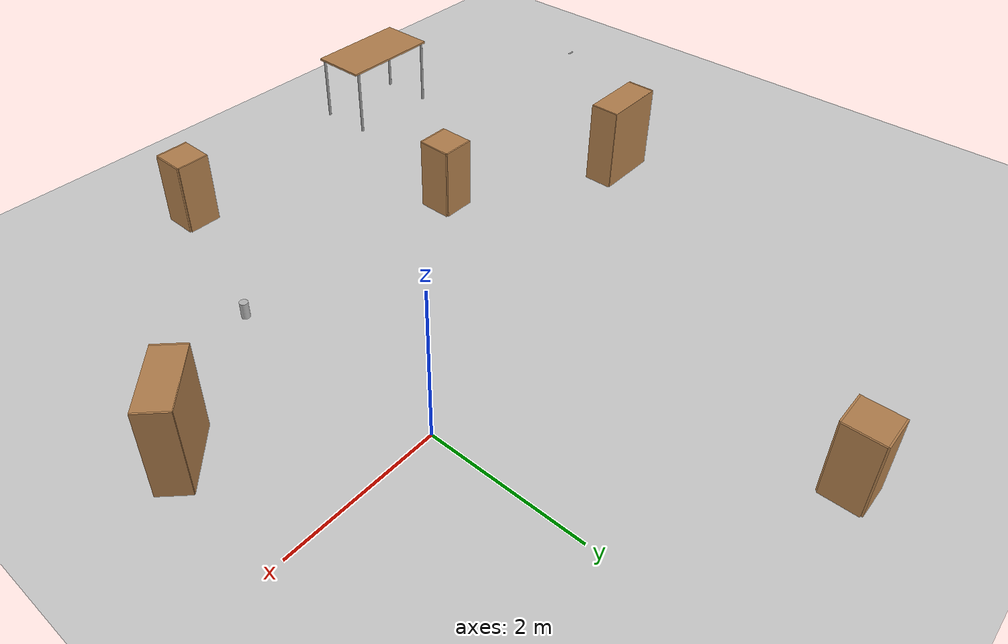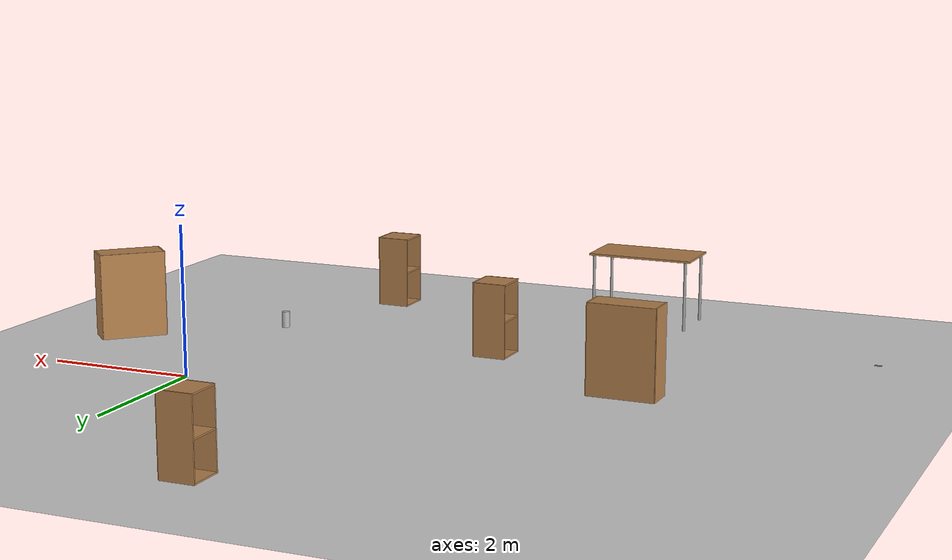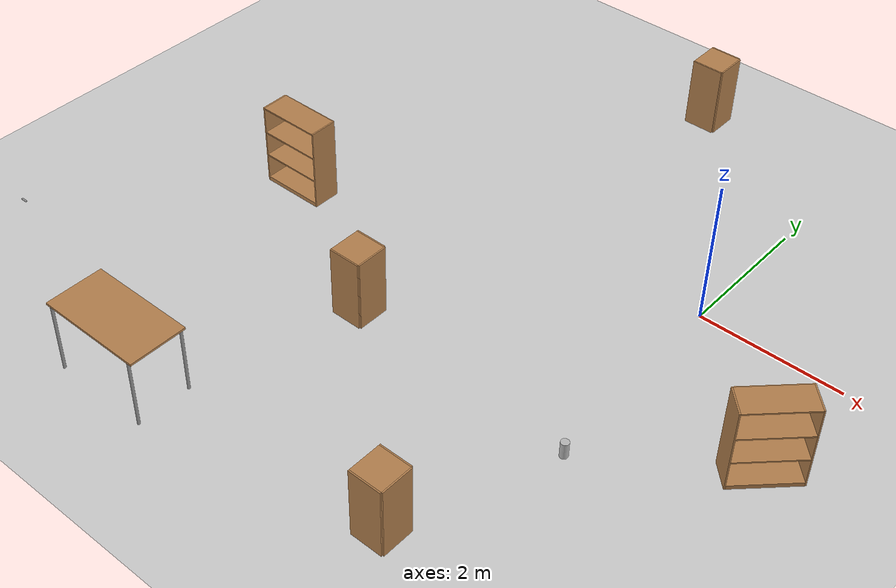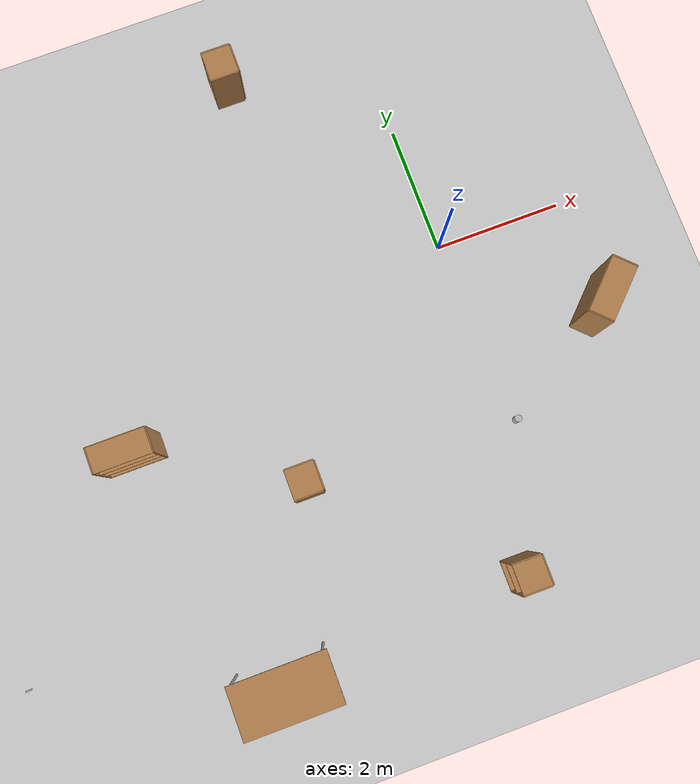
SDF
<sdf version="1.7">
 <world name="default">
  <light name="sun" type="directional">
   <pose>0 0 10 0 -0 0</pose>
   <diffuse>0.8 0.8 0.8 1</diffuse>
   <specular>0.2 0.2 0.2 1</specular>
   <attenuation>
    <range>1000</range>
    <constant>0.9</constant>
    <linear>0.01</linear>
    <quadratic>0.001</quadratic>
   </attenuation>
   <direction>-0.5 0.1 -0.9</direction>
   <spot><inner_angle>0</inner_angle><outer_angle>0</outer_angle><falloff>0</falloff></spot>
  </light>
  <model name="ground_plane">
   <static>1</static>
   <link name="link">
    <collision name="collision">
     <geometry><plane><normal>0 0 1</normal><size>100 100</size></plane></geometry>
     <surface>
      <contact><collide_bitmask>65535</collide_bitmask></contact>
      <friction><ode><mu>100</mu><mu2>50</mu2></ode></friction>
     </surface>
    </collision>
    <visual name="visual">
     <cast_shadows>0</cast_shadows>
     <geometry><plane><normal>0 0 1</normal><size>100 100</size></plane></geometry>
     <material>
      <script><uri>file://media/materials/scripts/gazebo.material</uri><name>Gazebo/Grey</name></script>
     </material>
    </visual>
   </link>
  </model>
  <gravity>0 0 -9.8</gravity>
  <magnetic_field>6e-06 2.3e-05 -4.2e-05</magnetic_field>
  <atmosphere type="adiabatic"/>
  <physics type="ode">
   <max_step_size>0.001</max_step_size>
   <real_time_factor>1</real_time_factor>
   <real_time_update_rate>1000</real_time_update_rate>
  </physics>
  <scene><ambient>0.4 0.4 0.4 1</ambient><background>0.7 0.7 0.7 1</background><shadows>1</shadows></scene>
  <spherical_coordinates>
   <surface_model>EARTH_WGS84</surface_model>
   <latitude_deg>0</latitude_deg>
   <longitude_deg>0</longitude_deg>
   <elevation>0</elevation>
   <heading_deg>0</heading_deg>
  </spherical_coordinates>
  <model name="cabinet">
   <static>1</static>
   <link name="cabinet_bottom_plate">
    <inertial>
     <pose>0 0 -1 0 -0 0</pose>
     <inertia><ixx>2.05</ixx><ixy>0</ixy><ixz>0</ixz><iyy>2.05</iyy><iyz>0</iyz><izz>2.05</izz></inertia>
     <mass>25</mass>
    </inertial>
    <collision name="cabinet_bottom_plate_geom">
     <pose>0 0 0.01 0 -0 0</pose>
     <geometry><box><size>0.45 0.45 0.02</size></box></geometry>
    </collision>
    <visual name="cabinet_bottom_plate_geom_visual">
     <pose>0 0 0.01 0 -0 0</pose>
     <geometry><box><size>0.45 0.45 0.02</size></box></geometry>
     <material>
      <script><uri>file://media/materials/scripts/gazebo.material</uri><name>Gazebo/Wood</name></script>
     </material>
    </visual>
    <collision name="cabinet_bottom_plate_geom_cabinet_back_plate">
     <pose>0.235 0 0.51 0 -0 0</pose>
     <geometry><box><size>0.02 0.45 1.02</size></box></geometry>
    </collision>
    <visual name="cabinet_bottom_plate_geom_cabinet_back_plate_visual">
     <pose>0.235 0 0.51 0 -0 0</pose>
     <geometry><box><size>0.02 0.45 1.02</size></box></geometry>
     <material>
      <script><uri>file://media/materials/scripts/gazebo.material</uri><name>Gazebo/Wood</name></script>
     </material>
    </visual>
    <collision name="cabinet_bottom_plate_geom_cabinet_left_plate">
     <pose>0 0.235 0.51 0 -0 0</pose>
     <geometry><box><size>0.45 0.02 1.02</size></box></geometry>
    </collision>
    <visual name="cabinet_bottom_plate_geom_cabinet_left_plate_visual">
     <pose>0 0.235 0.51 0 -0 0</pose>
     <geometry><box><size>0.45 0.02 1.02</size></box></geometry>
     <material>
      <script><uri>file://media/materials/scripts/gazebo.material</uri><name>Gazebo/Wood</name></script>
     </material>
    </visual>
    <collision name="cabinet_bottom_plate_geom_cabinet_middle_plate">
     <pose>0 0 0.51 0 -0 0</pose>
     <geometry><box><size>0.45 0.45 0.02</size></box></geometry>
    </collision>
    <visual name="cabinet_bottom_plate_geom_cabinet_middle_plate_visual">
     <pose>0 0 0.51 0 -0 0</pose>
     <geometry><box><size>0.45 0.45 0.02</size></box></geometry>
     <material>
      <script><uri>file://media/materials/scripts/gazebo.material</uri><name>Gazebo/Wood</name></script>
     </material>
    </visual>
    <collision name="cabinet_bottom_plate_geom_cabinet_right_plate">
     <pose>0 -0.235 0.51 0 -0 0</pose>
     <geometry><box><size>0.45 0.02 1.02</size></box></geometry>
    </collision>
    <visual name="cabinet_bottom_plate_geom_cabinet_right_plate_visual">
     <pose>0 -0.235 0.51 0 -0 0</pose>
     <geometry><box><size>0.45 0.02 1.02</size></box></geometry>
     <material>
      <script><uri>file://media/materials/scripts/gazebo.material</uri><name>Gazebo/Wood</name></script>
     </material>
    </visual>
    <collision name="cabinet_bottom_plate_geom_cabinet_top_plate">
     <pose>0 0 1.01 0 -0 0</pose>
     <geometry><box><size>0.45 0.45 0.02</size></box></geometry>
    </collision>
    <visual name="cabinet_bottom_plate_geom_cabinet_top_plate_visual">
     <pose>0 0 1.01 0 -0 0</pose>
     <geometry><box><size>0.45 0.45 0.02</size></box></geometry>
     <material>
      <script><uri>file://media/materials/scripts/gazebo.material</uri><name>Gazebo/Wood</name></script>
     </material>
    </visual>
   </link>
   <pose>-3.2045 -2.73705 0 0 -0 0</pose>
  </model>
  <model name="bookshelf">
   <static>1</static>
   <link name="link">
    <inertial><mass>1</mass></inertial>
    <collision name="back">
     <pose>0 0.005 0.6 0 -0 0</pose>
     <geometry><box><size>0.9 0.01 1.2</size></box></geometry>
    </collision>
    <visual name="visual1">
     <pose>0 0.005 0.6 0 -0 0</pose>
     <geometry><box><size>0.9 0.01 1.2</size></box></geometry>
     <material>
      <script><uri>file://media/materials/scripts/gazebo.material</uri><name>Gazebo/Wood</name></script>
     </material>
    </visual>
    <collision name="left_side">
     <pose>0.45 -0.195 0.6 0 -0 0</pose>
     <geometry><box><size>0.02 0.4 1.2</size></box></geometry>
    </collision>
    <visual name="visual2">
     <pose>0.45 -0.195 0.6 0 -0 0</pose>
     <geometry><box><size>0.02 0.4 1.2</size></box></geometry>
     <material>
      <script><uri>file://media/materials/scripts/gazebo.material</uri><name>Gazebo/Wood</name></script>
     </material>
    </visual>
    <collision name="right_side">
     <pose>-0.45 -0.195 0.6 0 -0 0</pose>
     <geometry><box><size>0.02 0.4 1.2</size></box></geometry>
    </collision>
    <visual name="visual3">
     <pose>-0.45 -0.195 0.6 0 -0 0</pose>
     <geometry><box><size>0.02 0.4 1.2</size></box></geometry>
     <material>
      <script><uri>file://media/materials/scripts/gazebo.material</uri><name>Gazebo/Wood</name></script>
     </material>
    </visual>
    <collision name="bottom">
     <pose>0 -0.195 0.03 0 -0 0</pose>
     <geometry><box><size>0.88 0.4 0.06</size></box></geometry>
    </collision>
    <visual name="visual4">
     <pose>0 -0.195 0.03 0 -0 0</pose>
     <geometry><box><size>0.88 0.4 0.06</size></box></geometry>
     <material>
      <script><uri>file://media/materials/scripts/gazebo.material</uri><name>Gazebo/Wood</name></script>
     </material>
    </visual>
    <collision name="top">
     <pose>0 -0.195 1.19 0 -0 0</pose>
     <geometry><box><size>0.88 0.4 0.02</size></box></geometry>
    </collision>
    <visual name="visual5">
     <pose>0 -0.195 1.19 0 -0 0</pose>
     <geometry><box><size>0.88 0.4 0.02</size></box></geometry>
     <material>
      <script><uri>file://media/materials/scripts/gazebo.material</uri><name>Gazebo/Wood</name></script>
     </material>
    </visual>
    <collision name="low_shelf">
     <pose>0 -0.195 0.43 0 -0 0</pose>
     <geometry><box><size>0.88 0.4 0.02</size></box></geometry>
    </collision>
    <visual name="visual6">
     <pose>0 -0.195 0.43 0 -0 0</pose>
     <geometry><box><size>0.88 0.4 0.02</size></box></geometry>
     <material>
      <script><uri>file://media/materials/scripts/gazebo.material</uri><name>Gazebo/Wood</name></script>
     </material>
    </visual>
    <collision name="high_shelf">
     <pose>0 -0.195 0.8 0 -0 0</pose>
     <geometry><box><size>0.88 0.4 0.02</size></box></geometry>
    </collision>
    <visual name="visual7">
     <pose>0 -0.195 0.8 0 -0 0</pose>
     <geometry><box><size>0.88 0.4 0.02</size></box></geometry>
     <material>
      <script><uri>file://media/materials/scripts/gazebo.material</uri><name>Gazebo/Wood</name></script>
     </material>
    </visual>
   </link>
   <pose>-5.49787 -1.25492 0 0 -0 0</pose>
  </model>
  <model name="table">
   <static>1</static>
   <link name="link">
    <collision name="surface">
     <pose>0 0 1 0 -0 0</pose>
     <geometry><box><size>1.5 0.8 0.03</size></box></geometry>
     <surface><friction><ode><mu>0.6</mu><mu2>0.6</mu2></ode></friction></surface>
    </collision>
    <visual name="visual1">
     <pose>0 0 1 0 -0 0</pose>
     <geometry><box><size>1.5 0.8 0.03</size></box></geometry>
     <material>
      <script><uri>file://media/materials/scripts/gazebo.material</uri><name>Gazebo/Wood</name></script>
     </material>
    </visual>
    <collision name="front_left_leg">
     <pose>0.68 0.38 0.5 0 -0 0</pose>
     <geometry><cylinder><radius>0.02</radius><length>1</length></cylinder></geometry>
    </collision>
    <visual name="front_left_leg">
     <pose>0.68 0.38 0.5 0 -0 0</pose>
     <geometry><cylinder><radius>0.02</radius><length>1</length></cylinder></geometry>
     <material>
      <script><uri>file://media/materials/scripts/gazebo.material</uri><name>Gazebo/Grey</name></script>
     </material>
    </visual>
    <collision name="front_right_leg">
     <pose>0.68 -0.38 0.5 0 -0 0</pose>
     <geometry><cylinder><radius>0.02</radius><length>1</length></cylinder></geometry>
    </collision>
    <visual name="front_right_leg">
     <pose>0.68 -0.38 0.5 0 -0 0</pose>
     <geometry><cylinder><radius>0.02</radius><length>1</length></cylinder></geometry>
     <material>
      <script><uri>file://media/materials/scripts/gazebo.material</uri><name>Gazebo/Grey</name></script>
     </material>
    </visual>
    <collision name="back_right_leg">
     <pose>-0.68 -0.38 0.5 0 -0 0</pose>
     <geometry><cylinder><radius>0.02</radius><length>1</length></cylinder></geometry>
    </collision>
    <visual name="back_right_leg">
     <pose>-0.68 -0.38 0.5 0 -0 0</pose>
     <geometry><cylinder><radius>0.02</radius><length>1</length></cylinder></geometry>
     <material>
      <script><uri>file://media/materials/scripts/gazebo.material</uri><name>Gazebo/Grey</name></script>
     </material>
    </visual>
    <collision name="back_left_leg">
     <pose>-0.68 0.38 0.5 0 -0 0</pose>
     <geometry><cylinder><radius>0.02</radius><length>1</length></cylinder></geometry>
    </collision>
    <visual name="back_left_leg">
     <pose>-0.68 0.38 0.5 0 -0 0</pose>
     <geometry><cylinder><radius>0.02</radius><length>1</length></cylinder></geometry>
     <material>
      <script><uri>file://media/materials/scripts/gazebo.material</uri><name>Gazebo/Grey</name></script>
     </material>
    </visual>
   </link>
   <pose>-4.44874 -5.42867 0 0 -0 0</pose>
  </model>
  <model name="stone_10_2_5_1cm">
   <link name="link">
    <pose>0 0 0.005 0 -0 0</pose>
    <inertial>
     <mass>0.0628</mass>
     <inertia>
      <ixx>3.79417e-06</ixx>
      <ixy>0</ixy>
      <ixz>0</ixz>
      <iyy>5.28567e-05</iyy>
      <iyz>0</iyz>
      <izz>5.56042e-05</izz>
     </inertia>
    </inertial>
    <collision name="collision">
     <geometry><box><size>0.1 0.025 0.01</size></box></geometry>
     <surface>
      <contact>
       <poissons_ratio>0.15</poissons_ratio>
       <elastic_modulus>8e+10</elastic_modulus>
       <ode><kp>100000</kp><kd>100</kd><max_vel>100</max_vel><min_depth>0.001</min_depth></ode>
      </contact>
      <friction>
       <torsional>
        <coefficient>1</coefficient>
        <use_patch_radius>0</use_patch_radius>
        <surface_radius>0.01</surface_radius>
       </torsional>
      </friction>
     </surface>
    </collision>
    <visual name="visual">
     <geometry><box><size>0.1 0.025 0.01</size></box></geometry>
     <material>
      <script><uri>file://media/materials/scripts/gazebo.material</uri><name>Gazebo/Grey</name></script>
     </material>
    </visual>
   </link>
   <pose>-8.08427 -4.19548 0.003998 0 -0 0</pose>
  </model>
  <model name="beer">
   <link name="link">
    <pose>0 0 0.115 0 -0 0</pose>
    <inertial>
     <mass>0.39</mass>
     <inertia><ixx>0.00058</ixx><ixy>0</ixy><ixz>0</ixz><iyy>0.00058</iyy><iyz>0</iyz><izz>0.00019</izz></inertia>
    </inertial>
    <collision name="collision">
     <geometry><cylinder><radius>0.055</radius><length>0.23</length></cylinder></geometry>
    </collision>
    <visual name="visual">
     <geometry><cylinder><radius>0.055</radius><length>0.23</length></cylinder></geometry>
     <material>
      <script>
       <uri>model://beer/materials/scripts</uri>
       <uri>model://beer/materials/textures</uri>
       <name>Beer/Diffuse</name>
      </script>
     </material>
    </visual>
   </link>
   <pose>0.146292 -2.94481 0.004996 2.5e-05 0.0001 0.000529</pose>
  </model>
  <model name="bookshelf_0">
   <static>1</static>
   <link name="link">
    <inertial><mass>1</mass></inertial>
    <collision name="back">
     <pose>0 0.005 0.6 0 -0 0</pose>
     <geometry><box><size>0.9 0.01 1.2</size></box></geometry>
    </collision>
    <visual name="visual1">
     <pose>0 0.005 0.6 0 -0 0</pose>
     <geometry><box><size>0.9 0.01 1.2</size></box></geometry>
     <material>
      <script><uri>file://media/materials/scripts/gazebo.material</uri><name>Gazebo/Wood</name></script>
     </material>
    </visual>
    <collision name="left_side">
     <pose>0.45 -0.195 0.6 0 -0 0</pose>
     <geometry><box><size>0.02 0.4 1.2</size></box></geometry>
    </collision>
    <visual name="visual2">
     <pose>0.45 -0.195 0.6 0 -0 0</pose>
     <geometry><box><size>0.02 0.4 1.2</size></box></geometry>
     <material>
      <script><uri>file://media/materials/scripts/gazebo.material</uri><name>Gazebo/Wood</name></script>
     </material>
    </visual>
    <collision name="right_side">
     <pose>-0.45 -0.195 0.6 0 -0 0</pose>
     <geometry><box><size>0.02 0.4 1.2</size></box></geometry>
    </collision>
    <visual name="visual3">
     <pose>-0.45 -0.195 0.6 0 -0 0</pose>
     <geometry><box><size>0.02 0.4 1.2</size></box></geometry>
     <material>
      <script><uri>file://media/materials/scripts/gazebo.material</uri><name>Gazebo/Wood</name></script>
     </material>
    </visual>
    <collision name="bottom">
     <pose>0 -0.195 0.03 0 -0 0</pose>
     <geometry><box><size>0.88 0.4 0.06</size></box></geometry>
    </collision>
    <visual name="visual4">
     <pose>0 -0.195 0.03 0 -0 0</pose>
     <geometry><box><size>0.88 0.4 0.06</size></box></geometry>
     <material>
      <script><uri>file://media/materials/scripts/gazebo.material</uri><name>Gazebo/Wood</name></script>
     </material>
    </visual>
    <collision name="top">
     <pose>0 -0.195 1.19 0 -0 0</pose>
     <geometry><box><size>0.88 0.4 0.02</size></box></geometry>
    </collision>
    <visual name="visual5">
     <pose>0 -0.195 1.19 0 -0 0</pose>
     <geometry><box><size>0.88 0.4 0.02</size></box></geometry>
     <material>
      <script><uri>file://media/materials/scripts/gazebo.material</uri><name>Gazebo/Wood</name></script>
     </material>
    </visual>
    <collision name="low_shelf">
     <pose>0 -0.195 0.43 0 -0 0</pose>
     <geometry><box><size>0.88 0.4 0.02</size></box></geometry>
    </collision>
    <visual name="visual6">
     <pose>0 -0.195 0.43 0 -0 0</pose>
     <geometry><box><size>0.88 0.4 0.02</size></box></geometry>
     <material>
      <script><uri>file://media/materials/scripts/gazebo.material</uri><name>Gazebo/Wood</name></script>
     </material>
    </visual>
    <collision name="high_shelf">
     <pose>0 -0.195 0.8 0 -0 0</pose>
     <geometry><box><size>0.88 0.4 0.02</size></box></geometry>
    </collision>
    <visual name="visual7">
     <pose>0 -0.195 0.8 0 -0 0</pose>
     <geometry><box><size>0.88 0.4 0.02</size></box></geometry>
     <material>
      <script><uri>file://media/materials/scripts/gazebo.material</uri><name>Gazebo/Wood</name></script>
     </material>
    </visual>
   </link>
   <pose>1.7886 -1.55736 0 0 -0 0.785398</pose>
  </model>
  <model name="cabinet_0">
   <static>1</static>
   <link name="cabinet_bottom_plate">
    <inertial>
     <pose>0 0 -1 0 -0 0</pose>
     <inertia><ixx>2.05</ixx><ixy>0</ixy><ixz>0</ixz><iyy>2.05</iyy><iyz>0</iyz><izz>2.05</izz></inertia>
     <mass>25</mass>
    </inertial>
    <collision name="cabinet_bottom_plate_geom">
     <pose>0 0 0.01 0 -0 0</pose>
     <geometry><box><size>0.45 0.45 0.02</size></box></geometry>
    </collision>
    <visual name="cabinet_bottom_plate_geom_visual">
     <pose>0 0 0.01 0 -0 0</pose>
     <geometry><box><size>0.45 0.45 0.02</size></box></geometry>
     <material>
      <script><uri>file://media/materials/scripts/gazebo.material</uri><name>Gazebo/Wood</name></script>
     </material>
    </visual>
    <collision name="cabinet_bottom_plate_geom_cabinet_back_plate">
     <pose>0.235 0 0.51 0 -0 0</pose>
     <geometry><box><size>0.02 0.45 1.02</size></box></geometry>
    </collision>
    <visual name="cabinet_bottom_plate_geom_cabinet_back_plate_visual">
     <pose>0.235 0 0.51 0 -0 0</pose>
     <geometry><box><size>0.02 0.45 1.02</size></box></geometry>
     <material>
      <script><uri>file://media/materials/scripts/gazebo.material</uri><name>Gazebo/Wood</name></script>
     </material>
    </visual>
    <collision name="cabinet_bottom_plate_geom_cabinet_left_plate">
     <pose>0 0.235 0.51 0 -0 0</pose>
     <geometry><box><size>0.45 0.02 1.02</size></box></geometry>
    </collision>
    <visual name="cabinet_bottom_plate_geom_cabinet_left_plate_visual">
     <pose>0 0.235 0.51 0 -0 0</pose>
     <geometry><box><size>0.45 0.02 1.02</size></box></geometry>
     <material>
      <script><uri>file://media/materials/scripts/gazebo.material</uri><name>Gazebo/Wood</name></script>
     </material>
    </visual>
    <collision name="cabinet_bottom_plate_geom_cabinet_middle_plate">
     <pose>0 0 0.51 0 -0 0</pose>
     <geometry><box><size>0.45 0.45 0.02</size></box></geometry>
    </collision>
    <visual name="cabinet_bottom_plate_geom_cabinet_middle_plate_visual">
     <pose>0 0 0.51 0 -0 0</pose>
     <geometry><box><size>0.45 0.45 0.02</size></box></geometry>
     <material>
      <script><uri>file://media/materials/scripts/gazebo.material</uri><name>Gazebo/Wood</name></script>
     </material>
    </visual>
    <collision name="cabinet_bottom_plate_geom_cabinet_right_plate">
     <pose>0 -0.235 0.51 0 -0 0</pose>
     <geometry><box><size>0.45 0.02 1.02</size></box></geometry>
    </collision>
    <visual name="cabinet_bottom_plate_geom_cabinet_right_plate_visual">
     <pose>0 -0.235 0.51 0 -0 0</pose>
     <geometry><box><size>0.45 0.02 1.02</size></box></geometry>
     <material>
      <script><uri>file://media/materials/scripts/gazebo.material</uri><name>Gazebo/Wood</name></script>
     </material>
    </visual>
    <collision name="cabinet_bottom_plate_geom_cabinet_top_plate">
     <pose>0 0 1.01 0 -0 0</pose>
     <geometry><box><size>0.45 0.45 0.02</size></box></geometry>
    </collision>
    <visual name="cabinet_bottom_plate_geom_cabinet_top_plate_visual">
     <pose>0 0 1.01 0 -0 0</pose>
     <geometry><box><size>0.45 0.45 0.02</size></box></geometry>
     <material>
      <script><uri>file://media/materials/scripts/gazebo.material</uri><name>Gazebo/Wood</name></script>
     </material>
    </visual>
   </link>
   <pose>-2.25109 3.58664 0 0 -0 0</pose>
  </model>
  <model name="cabinet_1">
   <static>1</static>
   <link name="cabinet_bottom_plate">
    <inertial>
     <pose>0 0 -1 0 -0 0</pose>
     <inertia><ixx>2.05</ixx><ixy>0</ixy><ixz>0</ixz><iyy>2.05</iyy><iyz>0</iyz><izz>2.05</izz></inertia>
     <mass>25</mass>
    </inertial>
    <collision name="cabinet_bottom_plate_geom">
     <pose>0 0 0.01 0 -0 0</pose>
     <geometry><box><size>0.45 0.45 0.02</size></box></geometry>
    </collision>
    <visual name="cabinet_bottom_plate_geom_visual">
     <pose>0 0 0.01 0 -0 0</pose>
     <geometry><box><size>0.45 0.45 0.02</size></box></geometry>
     <material>
      <script><uri>file://media/materials/scripts/gazebo.material</uri><name>Gazebo/Wood</name></script>
     </material>
    </visual>
    <collision name="cabinet_bottom_plate_geom_cabinet_back_plate">
     <pose>0.235 0 0.51 0 -0 0</pose>
     <geometry><box><size>0.02 0.45 1.02</size></box></geometry>
    </collision>
    <visual name="cabinet_bottom_plate_geom_cabinet_back_plate_visual">
     <pose>0.235 0 0.51 0 -0 0</pose>
     <geometry><box><size>0.02 0.45 1.02</size></box></geometry>
     <material>
      <script><uri>file://media/materials/scripts/gazebo.material</uri><name>Gazebo/Wood</name></script>
     </material>
    </visual>
    <collision name="cabinet_bottom_plate_geom_cabinet_left_plate">
     <pose>0 0.235 0.51 0 -0 0</pose>
     <geometry><box><size>0.45 0.02 1.02</size></box></geometry>
    </collision>
    <visual name="cabinet_bottom_plate_geom_cabinet_left_plate_visual">
     <pose>0 0.235 0.51 0 -0 0</pose>
     <geometry><box><size>0.45 0.02 1.02</size></box></geometry>
     <material>
      <script><uri>file://media/materials/scripts/gazebo.material</uri><name>Gazebo/Wood</name></script>
     </material>
    </visual>
    <collision name="cabinet_bottom_plate_geom_cabinet_middle_plate">
     <pose>0 0 0.51 0 -0 0</pose>
     <geometry><box><size>0.45 0.45 0.02</size></box></geometry>
    </collision>
    <visual name="cabinet_bottom_plate_geom_cabinet_middle_plate_visual">
     <pose>0 0 0.51 0 -0 0</pose>
     <geometry><box><size>0.45 0.45 0.02</size></box></geometry>
     <material>
      <script><uri>file://media/materials/scripts/gazebo.material</uri><name>Gazebo/Wood</name></script>
     </material>
    </visual>
    <collision name="cabinet_bottom_plate_geom_cabinet_right_plate">
     <pose>0 -0.235 0.51 0 -0 0</pose>
     <geometry><box><size>0.45 0.02 1.02</size></box></geometry>
    </collision>
    <visual name="cabinet_bottom_plate_geom_cabinet_right_plate_visual">
     <pose>0 -0.235 0.51 0 -0 0</pose>
     <geometry><box><size>0.45 0.02 1.02</size></box></geometry>
     <material>
      <script><uri>file://media/materials/scripts/gazebo.material</uri><name>Gazebo/Wood</name></script>
     </material>
    </visual>
    <collision name="cabinet_bottom_plate_geom_cabinet_top_plate">
     <pose>0 0 1.01 0 -0 0</pose>
     <geometry><box><size>0.45 0.45 0.02</size></box></geometry>
    </collision>
    <visual name="cabinet_bottom_plate_geom_cabinet_top_plate_visual">
     <pose>0 0 1.01 0 -0 0</pose>
     <geometry><box><size>0.45 0.45 0.02</size></box></geometry>
     <material>
      <script><uri>file://media/materials/scripts/gazebo.material</uri><name>Gazebo/Wood</name></script>
     </material>
    </visual>
   </link>
   <pose>-0.646542 -5.08737 0 0 -0 0</pose>
  </model>
 </world>
</sdf>
